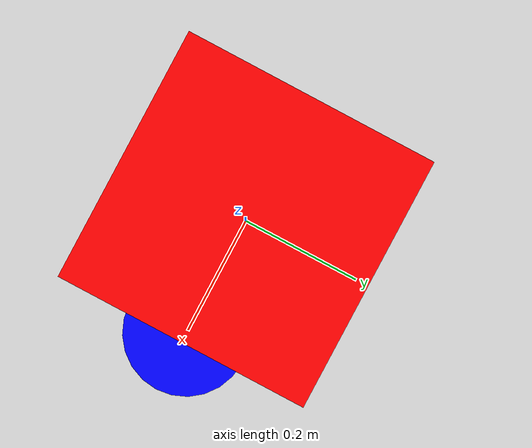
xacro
<?xml version="1.0"?>
<robot name="my_robot" xmlns:xacro="http://www.ros.org/wiki/xacro">

  <!-- Define Materials -->
  <xacro:property name="color_red" value="1 0 0 1"/>
  <xacro:property name="color_blue" value="0 0 1 1"/>

  <!-- Base Link -->
  <link name="base_link">
    <visual>
      <geometry><box size="0.4 0.4 0.2"/></geometry>
      <material><color rgba="${color_red}"/></material>
    </visual>
  </link>

  <!-- Wheel 1 -->
  <link name="wheel_1">
    <visual>
      <geometry><cylinder length="0.05" radius="0.1"/></geometry>
      <material><color rgba="${color_blue}"/></material>
    </visual>
  </link>

  <!-- Joint: Base to Wheel -->
  <joint name="base_wheel1_joint" type="continuous">
    <parent link="base_link"/>
    <child link="wheel_1"/>
    <origin xyz="0.2 0 0" rpy="0 0 0"/>
    <axis xyz="0 1 0"/>
  </joint>

</robot>
